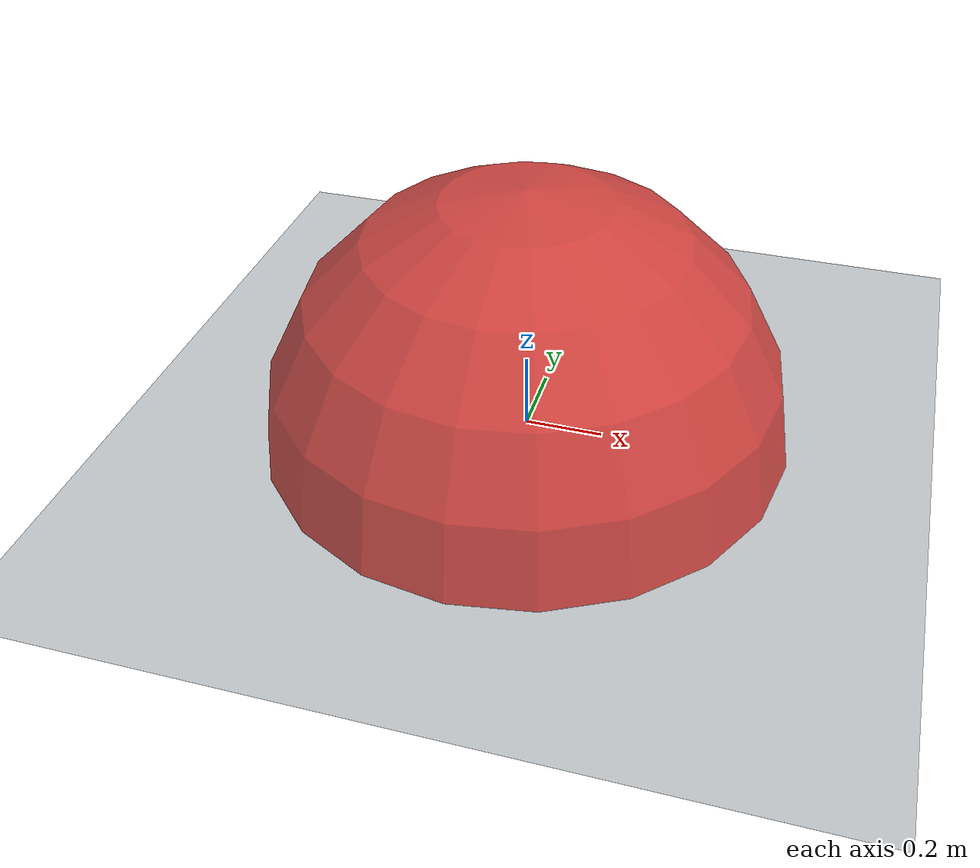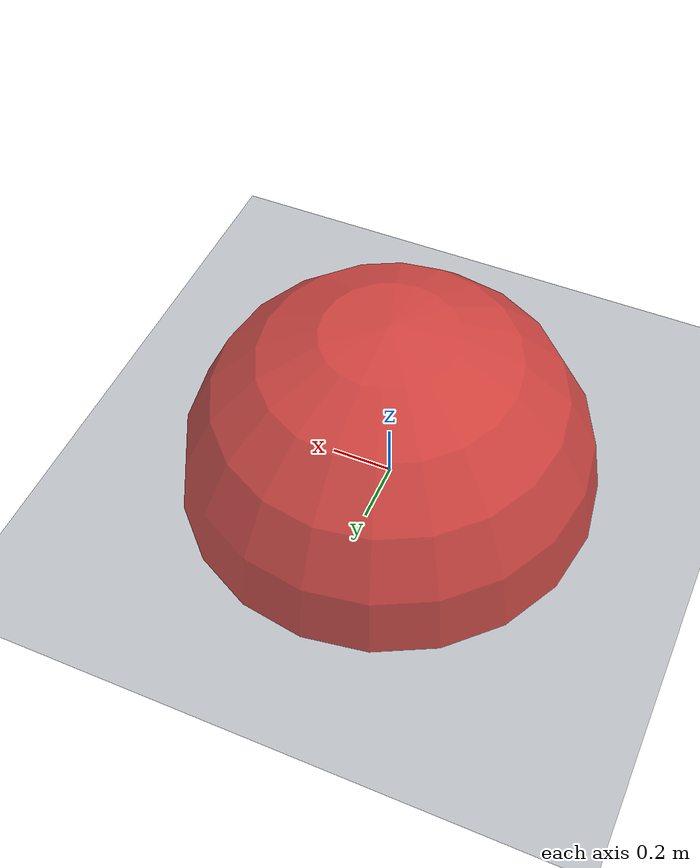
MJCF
<mujoco model="cf21B motor-off contact continuation"><compiler angle="radian" inertiafromgeom="false" /><option timestep="0.001" gravity="0 0 -9.8100000000000005" integrator="implicitfast" solver="Newton" iterations="100" tolerance="1e-10" /><default><geom condim="6" friction="0.69999999999999996 0.01 0.001" solref="0.006 1" solimp="0.95 0.99 0.001" margin="0" /></default><worldbody><light pos="0 0 5" dir="0 0 -1" /><geom name="ground" type="plane" size="20 20 0.1" pos="0 0 0.0" rgba="0.18 0.23 0.29 1" contype="2" conaffinity="1" /><body name="drone"><freejoint name="drone_free" align="false" /><inertial pos="0 0 0" mass="0.043379999697208405" fullinertia="2.4999999368446879e-05 2.8000000384054147e-05 4.8999998398358002e-05 0 0 0" /><geom name="drone_collider" type="sphere" size="0.086" pos="0 0 0.02" rgba="0.15 0.7 0.95 0.45" contype="1" conaffinity="2" /></body><body name="obstacle_0" gravcomp="1"><freejoint name="obstacle_free_0" align="false" /><inertial pos="0 0 0" mass="1000.0" diaginertia="184.89637884844328 184.89637884844328 184.89637884844328" /><geom name="obstacle_geom_0" type="sphere" size="0.6798830392950748" rgba="0.8 0.12 0.1 0.8" contype="2" conaffinity="1" /></body><body name="obstacle_1" gravcomp="1"><freejoint name="obstacle_free_1" align="false" /><inertial pos="0 0 0" mass="1000.0" diaginertia="167.55836210175937 167.55836210175937 167.55836210175937" /><geom name="obstacle_geom_1" type="sphere" size="0.6472216816936824" rgba="0.8 0.12 0.1 0.8" contype="2" conaffinity="1" /></body></worldbody></mujoco>
